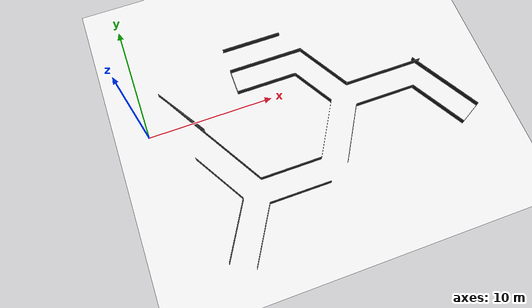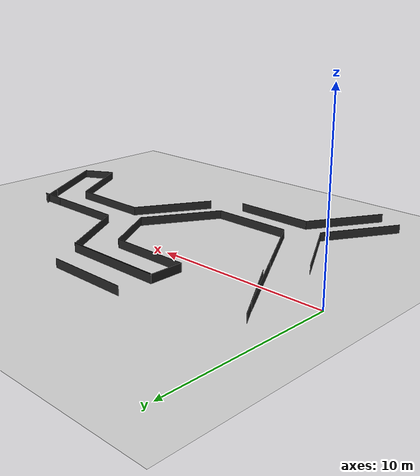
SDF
<sdf version="1.6">
 <world name="default">
  <model name="ground_plane">
   <static>1</static>
   <link name="link">
    <collision name="collision">
     <geometry><plane><normal>0 0 1</normal><size>100 100</size></plane></geometry>
     <surface><friction><ode><mu>100</mu><mu2>50</mu2></ode></friction></surface>
    </collision>
    <visual name="visual">
     <cast_shadows>0</cast_shadows>
     <geometry><plane><normal>0 0 1</normal><size>100 100</size></plane></geometry>
     <material>
      <script><uri>file://media/materials/scripts/gazebo.material</uri><name>Gazebo/White</name></script>
     </material>
    </visual>
   </link>
  </model>
  <model name="T_maze_0">
   <link name="link_clone_clone_1_clone_clone_0_clone">
    <inertial>
     <mass>1</mass>
     <inertia>
      <ixx>0.166667</ixx>
      <ixy>0</ixy>
      <ixz>0</ixz>
      <iyy>0.166667</iyy>
      <iyz>0</iyz>
      <izz>0.166667</izz>
     </inertia>
    </inertial>
    <pose>-0.706969 0.731883 3e-06 5e-06 -0 0</pose>
    <visual name="visual">
     <geometry><box><size>0.015 6 0.5</size></box></geometry>
     <material>
      <script><name>Gazebo/FlatBlack</name><uri>file://media/materials/scripts/gazebo.material</uri></script>
      <shader type="pixel"><normal_map>__default__</normal_map></shader>
      <ambient>0.1 0.1 0.1 1</ambient>
      <diffuse>0.1 0.1 0.1 1</diffuse>
      <specular>0.01 0.01 0.01 1</specular>
      <emissive>0 0 0 1</emissive>
     </material>
     <pose>0 0.58 0 0 -0 0</pose>
    </visual>
    <visual name="visual_2">
     <geometry><box><size>0.015 4.8453 0.5</size></box></geometry>
     <material>
      <script><name>Gazebo/FlatBlack</name><uri>file://media/materials/scripts/gazebo.material</uri></script>
      <shader type="pixel"><normal_map>__default__</normal_map></shader>
      <ambient>0.1 0.1 0.1 1</ambient>
      <diffuse>0.1 0.1 0.1 1</diffuse>
      <specular>0.01 0.01 0.01 1</specular>
      <emissive>0 0 0 1</emissive>
     </material>
     <pose>2 0 0 0 -0 0</pose>
    </visual>
    <collision name="collision">
     <pose>0 0.58 0 0 -0 0</pose>
     <geometry><box><size>0.015 6 0.5</size></box></geometry>
     <surface>
      <friction>
       <ode><mu>1</mu><mu2>1</mu2><fdir1>0 0 0</fdir1><slip1>0</slip1><slip2>0</slip2></ode>
       <torsional>
        <coefficient>1</coefficient>
        <patch_radius>0</patch_radius>
        <surface_radius>0</surface_radius>
        <use_patch_radius>1</use_patch_radius>
        <ode><slip>0</slip></ode>
       </torsional>
      </friction>
      <bounce><restitution_coefficient>0</restitution_coefficient><threshold>1e+06</threshold></bounce>
      <contact>
       <collide_without_contact>0</collide_without_contact>
       <collide_without_contact_bitmask>1</collide_without_contact_bitmask>
       <collide_bitmask>1</collide_bitmask>
       <ode>
        <soft_cfm>0</soft_cfm>
        <soft_erp>0.2</soft_erp>
        <kp>1e+13</kp>
        <kd>1</kd>
        <max_vel>0.01</max_vel>
        <min_depth>0</min_depth>
       </ode>
       <bullet>
        <split_impulse>1</split_impulse>
        <split_impulse_penetration_threshold>-0.01</split_impulse_penetration_threshold>
        <soft_cfm>0</soft_cfm>
        <soft_erp>0.2</soft_erp>
        <kp>1e+13</kp>
        <kd>1</kd>
       </bullet>
      </contact>
     </surface>
    </collision>
    <collision name="collision_1">
     <pose>2 0 0 0 -0 0</pose>
     <geometry><box><size>0.015 4.8453 0.5</size></box></geometry>
     <surface>
      <friction>
       <ode><mu>1</mu><mu2>1</mu2><fdir1>0 0 0</fdir1><slip1>0</slip1><slip2>0</slip2></ode>
       <torsional>
        <coefficient>1</coefficient>
        <patch_radius>0</patch_radius>
        <surface_radius>0</surface_radius>
        <use_patch_radius>1</use_patch_radius>
        <ode><slip>0</slip></ode>
       </torsional>
      </friction>
      <bounce><restitution_coefficient>0</restitution_coefficient><threshold>1e+06</threshold></bounce>
      <contact>
       <collide_without_contact>0</collide_without_contact>
       <collide_without_contact_bitmask>1</collide_without_contact_bitmask>
       <collide_bitmask>1</collide_bitmask>
       <ode>
        <soft_cfm>0</soft_cfm>
        <soft_erp>0.2</soft_erp>
        <kp>1e+13</kp>
        <kd>1</kd>
        <max_vel>0.01</max_vel>
        <min_depth>0</min_depth>
       </ode>
       <bullet>
        <split_impulse>1</split_impulse>
        <split_impulse_penetration_threshold>-0.01</split_impulse_penetration_threshold>
        <soft_cfm>0</soft_cfm>
        <soft_erp>0.2</soft_erp>
        <kp>1e+13</kp>
        <kd>1</kd>
       </bullet>
      </contact>
     </surface>
    </collision>
   </link>
   <static>1</static>
   <pose>9.33217 3.95788 0.249997 -3.14159 -3e-06 1.57079</pose>
  </model>
  <model name="T_camber_2_2">
   <link name="link">
    <inertial>
     <mass>1</mass>
     <inertia>
      <ixx>0.166667</ixx>
      <ixy>0</ixy>
      <ixz>0</ixz>
      <iyy>0.166667</iyy>
      <iyz>0</iyz>
      <izz>0.166667</izz>
     </inertia>
    </inertial>
    <pose>8.67982 0.164586 0 0 -0 0</pose>
    <visual name="visual">
     <geometry><box><size>0.015 4.8453 0.5</size></box></geometry>
     <material>
      <script><name>Gazebo/FlatBlack</name><uri>file://media/materials/scripts/gazebo.material</uri></script>
      <shader type="pixel"><normal_map>__default__</normal_map></shader>
      <ambient>0.1 0.1 0.1 1</ambient>
      <diffuse>0.1 0.1 0.1 1</diffuse>
      <specular>0.01 0.01 0.01 1</specular>
      <emissive>0 0 0 1</emissive>
     </material>
    </visual>
    <visual name="ModelPreview_1::link::visual_2">
     <geometry><box><size>0.015 4.8453 0.5</size></box></geometry>
     <material>
      <script><name>Gazebo/FlatBlack</name><uri>file://media/materials/scripts/gazebo.material</uri></script>
      <shader type="pixel"><normal_map>__default__</normal_map></shader>
      <ambient>0.1 0.1 0.1 1</ambient>
      <diffuse>0.1 0.1 0.1 1</diffuse>
      <specular>0.01 0.01 0.01 1</specular>
      <emissive>0 0 0 1</emissive>
     </material>
     <pose>2 0 0 0 -0 0</pose>
    </visual>
    <collision name="collision_1">
     <pose>2 0 0 0 -0 0</pose>
     <geometry><box><size>0.015 4.8453 0.5</size></box></geometry>
     <surface>
      <friction>
       <ode><mu>1</mu><mu2>1</mu2><fdir1>0 0 0</fdir1><slip1>0</slip1><slip2>0</slip2></ode>
       <torsional>
        <coefficient>1</coefficient>
        <patch_radius>0</patch_radius>
        <surface_radius>0</surface_radius>
        <use_patch_radius>1</use_patch_radius>
        <ode><slip>0</slip></ode>
       </torsional>
      </friction>
      <bounce><restitution_coefficient>0</restitution_coefficient><threshold>1e+06</threshold></bounce>
      <contact>
       <collide_without_contact>0</collide_without_contact>
       <collide_without_contact_bitmask>1</collide_without_contact_bitmask>
       <collide_bitmask>1</collide_bitmask>
       <ode>
        <soft_cfm>0</soft_cfm>
        <soft_erp>0.2</soft_erp>
        <kp>1e+13</kp>
        <kd>1</kd>
        <max_vel>0.01</max_vel>
        <min_depth>0</min_depth>
       </ode>
       <bullet>
        <split_impulse>1</split_impulse>
        <split_impulse_penetration_threshold>-0.01</split_impulse_penetration_threshold>
        <soft_cfm>0</soft_cfm>
        <soft_erp>0.2</soft_erp>
        <kp>1e+13</kp>
        <kd>1</kd>
       </bullet>
      </contact>
     </surface>
    </collision>
    <collision name="collision">
     <geometry><box><size>0.015 4.8453 0.5</size></box></geometry>
     <surface>
      <friction>
       <ode><mu>1</mu><mu2>1</mu2><fdir1>0 0 0</fdir1><slip1>0</slip1><slip2>0</slip2></ode>
       <torsional>
        <coefficient>1</coefficient>
        <patch_radius>0</patch_radius>
        <surface_radius>0</surface_radius>
        <use_patch_radius>1</use_patch_radius>
        <ode><slip>0</slip></ode>
       </torsional>
      </friction>
      <bounce><restitution_coefficient>0</restitution_coefficient><threshold>1e+06</threshold></bounce>
      <contact>
       <collide_without_contact>0</collide_without_contact>
       <collide_without_contact_bitmask>1</collide_without_contact_bitmask>
       <collide_bitmask>1</collide_bitmask>
       <ode>
        <soft_cfm>0</soft_cfm>
        <soft_erp>0.2</soft_erp>
        <kp>1e+13</kp>
        <kd>1</kd>
        <max_vel>0.01</max_vel>
        <min_depth>0</min_depth>
       </ode>
       <bullet>
        <split_impulse>1</split_impulse>
        <split_impulse_penetration_threshold>-0.01</split_impulse_penetration_threshold>
        <soft_cfm>0</soft_cfm>
        <soft_erp>0.2</soft_erp>
        <kp>1e+13</kp>
        <kd>1</kd>
       </bullet>
      </contact>
     </surface>
    </collision>
   </link>
   <link name="link_clone_0">
    <inertial>
     <mass>1</mass>
     <inertia>
      <ixx>0.166667</ixx>
      <ixy>0</ixy>
      <ixz>0</ixz>
      <iyy>0.166667</iyy>
      <iyz>0</iyz>
      <izz>0.166667</izz>
     </inertia>
    </inertial>
    <pose>7.58433 5.52401 0 5e-06 -0 -2.0944</pose>
    <visual name="visual_2">
     <geometry><box><size>0.015 4.8453 0.5</size></box></geometry>
     <material>
      <script><name>Gazebo/FlatBlack</name><uri>file://media/materials/scripts/gazebo.material</uri></script>
      <shader type="pixel"><normal_map>__default__</normal_map></shader>
      <ambient>0.1 0.1 0.1 1</ambient>
      <diffuse>0.1 0.1 0.1 1</diffuse>
      <specular>0.01 0.01 0.01 1</specular>
      <emissive>0 0 0 1</emissive>
     </material>
     <pose>2 0 0 0 -0 0</pose>
    </visual>
    <visual name="visual">
     <geometry><box><size>0.015 4.8453 0.5</size></box></geometry>
     <material>
      <script><name>Gazebo/FlatBlack</name><uri>file://media/materials/scripts/gazebo.material</uri></script>
      <shader type="pixel"><normal_map>__default__</normal_map></shader>
      <ambient>0.1 0.1 0.1 1</ambient>
      <diffuse>0.1 0.1 0.1 1</diffuse>
      <specular>0.01 0.01 0.01 1</specular>
      <emissive>0 0 0 1</emissive>
     </material>
    </visual>
    <collision name="collision">
     <geometry><box><size>0.015 4.8453 0.5</size></box></geometry>
     <surface>
      <friction>
       <ode><mu>1</mu><mu2>1</mu2><fdir1>0 0 0</fdir1><slip1>0</slip1><slip2>0</slip2></ode>
       <torsional>
        <coefficient>1</coefficient>
        <patch_radius>0</patch_radius>
        <surface_radius>0</surface_radius>
        <use_patch_radius>1</use_patch_radius>
        <ode><slip>0</slip></ode>
       </torsional>
      </friction>
      <bounce><restitution_coefficient>0</restitution_coefficient><threshold>1e+06</threshold></bounce>
      <contact>
       <collide_without_contact>0</collide_without_contact>
       <collide_without_contact_bitmask>1</collide_without_contact_bitmask>
       <collide_bitmask>1</collide_bitmask>
       <ode>
        <soft_cfm>0</soft_cfm>
        <soft_erp>0.2</soft_erp>
        <kp>1e+13</kp>
        <kd>1</kd>
        <max_vel>0.01</max_vel>
        <min_depth>0</min_depth>
       </ode>
       <bullet>
        <split_impulse>1</split_impulse>
        <split_impulse_penetration_threshold>-0.01</split_impulse_penetration_threshold>
        <soft_cfm>0</soft_cfm>
        <soft_erp>0.2</soft_erp>
        <kp>1e+13</kp>
        <kd>1</kd>
       </bullet>
      </contact>
     </surface>
    </collision>
    <collision name="collision_1">
     <pose>2 0 0 0 -0 0</pose>
     <geometry><box><size>0.015 4.8453 0.5</size></box></geometry>
     <surface>
      <friction>
       <ode><mu>1</mu><mu2>1</mu2><fdir1>0 0 0</fdir1><slip1>0</slip1><slip2>0</slip2></ode>
       <torsional>
        <coefficient>1</coefficient>
        <patch_radius>0</patch_radius>
        <surface_radius>0</surface_radius>
        <use_patch_radius>1</use_patch_radius>
        <ode><slip>0</slip></ode>
       </torsional>
      </friction>
      <bounce><restitution_coefficient>0</restitution_coefficient><threshold>1e+06</threshold></bounce>
      <contact>
       <collide_without_contact>0</collide_without_contact>
       <collide_without_contact_bitmask>1</collide_without_contact_bitmask>
       <collide_bitmask>1</collide_bitmask>
       <ode>
        <soft_cfm>0</soft_cfm>
        <soft_erp>0.2</soft_erp>
        <kp>1e+13</kp>
        <kd>1</kd>
        <max_vel>0.01</max_vel>
        <min_depth>0</min_depth>
       </ode>
       <bullet>
        <split_impulse>1</split_impulse>
        <split_impulse_penetration_threshold>-0.01</split_impulse_penetration_threshold>
        <soft_cfm>0</soft_cfm>
        <soft_erp>0.2</soft_erp>
        <kp>1e+13</kp>
        <kd>1</kd>
       </bullet>
      </contact>
     </surface>
    </collision>
   </link>
   <link name="link_clone_0_clone">
    <inertial>
     <mass>1</mass>
     <inertia>
      <ixx>0.166667</ixx>
      <ixy>0</ixy>
      <ixz>0</ixz>
      <iyy>0.166667</iyy>
      <iyz>0</iyz>
      <izz>0.166667</izz>
     </inertia>
    </inertial>
    <pose>12.7746 -3.46264 0 5e-06 -0 -2.0944</pose>
    <visual name="visual">
     <geometry><box><size>0.015 4.8453 0.5</size></box></geometry>
     <material>
      <script><name>Gazebo/FlatBlack</name><uri>file://media/materials/scripts/gazebo.material</uri></script>
      <shader type="pixel"><normal_map>__default__</normal_map></shader>
      <ambient>0.1 0.1 0.1 1</ambient>
      <diffuse>0.1 0.1 0.1 1</diffuse>
      <specular>0.01 0.01 0.01 1</specular>
      <emissive>0 0 0 1</emissive>
     </material>
    </visual>
    <visual name="visual_2">
     <geometry><box><size>0.015 4.8453 0.5</size></box></geometry>
     <material>
      <script><name>Gazebo/FlatBlack</name><uri>file://media/materials/scripts/gazebo.material</uri></script>
      <shader type="pixel"><normal_map>__default__</normal_map></shader>
      <ambient>0.1 0.1 0.1 1</ambient>
      <diffuse>0.1 0.1 0.1 1</diffuse>
      <specular>0.01 0.01 0.01 1</specular>
      <emissive>0 0 0 1</emissive>
     </material>
     <pose>2 0 0 0 -0 0</pose>
    </visual>
    <collision name="collision">
     <geometry><box><size>0.015 4.8453 0.5</size></box></geometry>
     <surface>
      <friction>
       <ode><mu>1</mu><mu2>1</mu2><fdir1>0 0 0</fdir1><slip1>0</slip1><slip2>0</slip2></ode>
       <torsional>
        <coefficient>1</coefficient>
        <patch_radius>0</patch_radius>
        <surface_radius>0</surface_radius>
        <use_patch_radius>1</use_patch_radius>
        <ode><slip>0</slip></ode>
       </torsional>
      </friction>
      <bounce><restitution_coefficient>0</restitution_coefficient><threshold>1e+06</threshold></bounce>
      <contact>
       <collide_without_contact>0</collide_without_contact>
       <collide_without_contact_bitmask>1</collide_without_contact_bitmask>
       <collide_bitmask>1</collide_bitmask>
       <ode>
        <soft_cfm>0</soft_cfm>
        <soft_erp>0.2</soft_erp>
        <kp>1e+13</kp>
        <kd>1</kd>
        <max_vel>0.01</max_vel>
        <min_depth>0</min_depth>
       </ode>
       <bullet>
        <split_impulse>1</split_impulse>
        <split_impulse_penetration_threshold>-0.01</split_impulse_penetration_threshold>
        <soft_cfm>0</soft_cfm>
        <soft_erp>0.2</soft_erp>
        <kp>1e+13</kp>
        <kd>1</kd>
       </bullet>
      </contact>
     </surface>
    </collision>
    <collision name="collision_1">
     <pose>2 0 0 0 -0 0</pose>
     <geometry><box><size>0.015 4.8453 0.5</size></box></geometry>
     <surface>
      <friction>
       <ode><mu>1</mu><mu2>1</mu2><fdir1>0 0 0</fdir1><slip1>0</slip1><slip2>0</slip2></ode>
       <torsional>
        <coefficient>1</coefficient>
        <patch_radius>0</patch_radius>
        <surface_radius>0</surface_radius>
        <use_patch_radius>1</use_patch_radius>
        <ode><slip>0</slip></ode>
       </torsional>
      </friction>
      <bounce><restitution_coefficient>0</restitution_coefficient><threshold>1e+06</threshold></bounce>
      <contact>
       <collide_without_contact>0</collide_without_contact>
       <collide_without_contact_bitmask>1</collide_without_contact_bitmask>
       <collide_bitmask>1</collide_bitmask>
       <ode>
        <soft_cfm>0</soft_cfm>
        <soft_erp>0.2</soft_erp>
        <kp>1e+13</kp>
        <kd>1</kd>
        <max_vel>0.01</max_vel>
        <min_depth>0</min_depth>
       </ode>
       <bullet>
        <split_impulse>1</split_impulse>
        <split_impulse_penetration_threshold>-0.01</split_impulse_penetration_threshold>
        <soft_cfm>0</soft_cfm>
        <soft_erp>0.2</soft_erp>
        <kp>1e+13</kp>
        <kd>1</kd>
       </bullet>
      </contact>
     </surface>
    </collision>
   </link>
   <link name="link_clone_0_clone_clone_1_clone_0">
    <inertial>
     <mass>1</mass>
     <inertia>
      <ixx>0.166667</ixx>
      <ixy>0</ixy>
      <ixz>0</ixz>
      <iyy>0.166667</iyy>
      <iyz>0</iyz>
      <izz>0.166667</izz>
     </inertia>
    </inertial>
    <pose>2.39592 3.79036 1e-06 5e-06 -0 2.0944</pose>
    <visual name="visual">
     <geometry><box><size>0.015 3.7053 0.5</size></box></geometry>
     <material>
      <script><name>Gazebo/FlatBlack</name><uri>file://media/materials/scripts/gazebo.material</uri></script>
      <shader type="pixel"><normal_map>__default__</normal_map></shader>
      <ambient>0.1 0.1 0.1 1</ambient>
      <diffuse>0.1 0.1 0.1 1</diffuse>
      <specular>0.01 0.01 0.01 1</specular>
      <emissive>0 0 0 1</emissive>
     </material>
     <pose>0 -0.57 0 0 -0 0</pose>
    </visual>
    <visual name="visual_2">
     <geometry><box><size>0.015 4.8453 0.5</size></box></geometry>
     <material>
      <script><name>Gazebo/FlatBlack</name><uri>file://media/materials/scripts/gazebo.material</uri></script>
      <shader type="pixel"><normal_map>__default__</normal_map></shader>
      <ambient>0.1 0.1 0.1 1</ambient>
      <diffuse>0.1 0.1 0.1 1</diffuse>
      <specular>0.01 0.01 0.01 1</specular>
      <emissive>0 0 0 1</emissive>
     </material>
     <pose>2 0 0 0 -0 0</pose>
    </visual>
    <collision name="collision">
     <pose>0 -0.57 0 0 -0 0</pose>
     <geometry><box><size>0.015 3.7053 0.5</size></box></geometry>
     <surface>
      <friction>
       <ode><mu>1</mu><mu2>1</mu2><fdir1>0 0 0</fdir1><slip1>0</slip1><slip2>0</slip2></ode>
       <torsional>
        <coefficient>1</coefficient>
        <patch_radius>0</patch_radius>
        <surface_radius>0</surface_radius>
        <use_patch_radius>1</use_patch_radius>
        <ode><slip>0</slip></ode>
       </torsional>
      </friction>
      <bounce><restitution_coefficient>0</restitution_coefficient><threshold>1e+06</threshold></bounce>
      <contact>
       <collide_without_contact>0</collide_without_contact>
       <collide_without_contact_bitmask>1</collide_without_contact_bitmask>
       <collide_bitmask>1</collide_bitmask>
       <ode>
        <soft_cfm>0</soft_cfm>
        <soft_erp>0.2</soft_erp>
        <kp>1e+13</kp>
        <kd>1</kd>
        <max_vel>0.01</max_vel>
        <min_depth>0</min_depth>
       </ode>
       <bullet>
        <split_impulse>1</split_impulse>
        <split_impulse_penetration_threshold>-0.01</split_impulse_penetration_threshold>
        <soft_cfm>0</soft_cfm>
        <soft_erp>0.2</soft_erp>
        <kp>1e+13</kp>
        <kd>1</kd>
       </bullet>
      </contact>
     </surface>
    </collision>
    <collision name="collision_1">
     <pose>2 0 0 0 -0 0</pose>
     <geometry><box><size>0.015 4.8453 0.5</size></box></geometry>
     <surface>
      <friction>
       <ode><mu>1</mu><mu2>1</mu2><fdir1>0 0 0</fdir1><slip1>0</slip1><slip2>0</slip2></ode>
       <torsional>
        <coefficient>1</coefficient>
        <patch_radius>0</patch_radius>
        <surface_radius>0</surface_radius>
        <use_patch_radius>1</use_patch_radius>
        <ode><slip>0</slip></ode>
       </torsional>
      </friction>
      <bounce><restitution_coefficient>0</restitution_coefficient><threshold>1e+06</threshold></bounce>
      <contact>
       <collide_without_contact>0</collide_without_contact>
       <collide_without_contact_bitmask>1</collide_without_contact_bitmask>
       <collide_bitmask>1</collide_bitmask>
       <ode>
        <soft_cfm>0</soft_cfm>
        <soft_erp>0.2</soft_erp>
        <kp>1e+13</kp>
        <kd>1</kd>
        <max_vel>0.01</max_vel>
        <min_depth>0</min_depth>
       </ode>
       <bullet>
        <split_impulse>1</split_impulse>
        <split_impulse_penetration_threshold>-0.01</split_impulse_penetration_threshold>
        <soft_cfm>0</soft_cfm>
        <soft_erp>0.2</soft_erp>
        <kp>1e+13</kp>
        <kd>1</kd>
       </bullet>
      </contact>
     </surface>
    </collision>
   </link>
   <link name="link_clone_0_clone_clone_1_clone_0_clone_clone_0_clone_2">
    <inertial>
     <mass>1</mass>
     <inertia>
      <ixx>0.166667</ixx>
      <ixy>0</ixy>
      <ixz>0</ixz>
      <iyy>0.166667</iyy>
      <iyz>0</iyz>
      <izz>0.166667</izz>
     </inertia>
    </inertial>
    <pose>1.89546 -6.09047 2.3e-05 4e-06 2e-06 -1.01446</pose>
    <visual name="visual">
     <geometry><box><size>0.015 4.8453 0.5</size></box></geometry>
     <material>
      <script><name>Gazebo/FlatBlack</name><uri>file://media/materials/scripts/gazebo.material</uri></script>
      <shader type="pixel"><normal_map>__default__</normal_map></shader>
      <ambient>0.1 0.1 0.1 1</ambient>
      <diffuse>0.1 0.1 0.1 1</diffuse>
      <specular>0.01 0.01 0.01 1</specular>
      <emissive>0 0 0 1</emissive>
     </material>
     <pose>0 -0.57 0 0 -0 0</pose>
    </visual>
    <collision name="collision">
     <pose>0 -0.57 0 0 -0 0</pose>
     <geometry><box><size>0.015 4.8453 0.5</size></box></geometry>
     <surface>
      <friction>
       <ode><mu>1</mu><mu2>1</mu2><fdir1>0 0 0</fdir1><slip1>0</slip1><slip2>0</slip2></ode>
       <torsional>
        <coefficient>1</coefficient>
        <patch_radius>0</patch_radius>
        <surface_radius>0</surface_radius>
        <use_patch_radius>1</use_patch_radius>
        <ode><slip>0</slip></ode>
       </torsional>
      </friction>
      <bounce><restitution_coefficient>0</restitution_coefficient><threshold>1e+06</threshold></bounce>
      <contact>
       <collide_without_contact>0</collide_without_contact>
       <collide_without_contact_bitmask>1</collide_without_contact_bitmask>
       <collide_bitmask>1</collide_bitmask>
       <ode>
        <soft_cfm>0</soft_cfm>
        <soft_erp>0.2</soft_erp>
        <kp>1e+13</kp>
        <kd>1</kd>
        <max_vel>0.01</max_vel>
        <min_depth>0</min_depth>
       </ode>
       <bullet>
        <split_impulse>1</split_impulse>
        <split_impulse_penetration_threshold>-0.01</split_impulse_penetration_threshold>
        <soft_cfm>0</soft_cfm>
        <soft_erp>0.2</soft_erp>
        <kp>1e+13</kp>
        <kd>1</kd>
       </bullet>
      </contact>
     </surface>
    </collision>
   </link>
   <link name="link_clone_0_clone_clone_1_clone_0_clone_clone_1_clone">
    <inertial>
     <mass>1</mass>
     <inertia>
      <ixx>0.166667</ixx>
      <ixy>0</ixy>
      <ixz>0</ixz>
      <iyy>0.166667</iyy>
      <iyz>0</iyz>
      <izz>0.166667</izz>
     </inertia>
    </inertial>
    <pose>1.95158 -6.14009 7e-06 0 5e-06 2.0944</pose>
    <visual name="visual">
     <geometry><box><size>0.015 4.8453 0.5</size></box></geometry>
     <material>
      <script><name>Gazebo/FlatBlack</name><uri>file://media/materials/scripts/gazebo.material</uri></script>
      <shader type="pixel"><normal_map>__default__</normal_map></shader>
      <ambient>0.1 0.1 0.1 1</ambient>
      <diffuse>0.1 0.1 0.1 1</diffuse>
      <specular>0.01 0.01 0.01 1</specular>
      <emissive>0 0 0 1</emissive>
     </material>
     <pose>0 -0.57 0 0 -0 0</pose>
    </visual>
    <collision name="collision">
     <pose>0 -0.57 0 0 -0 0</pose>
     <geometry><box><size>0.015 4.8453 0.5</size></box></geometry>
     <surface>
      <friction>
       <ode><mu>1</mu><mu2>1</mu2><fdir1>0 0 0</fdir1><slip1>0</slip1><slip2>0</slip2></ode>
       <torsional>
        <coefficient>1</coefficient>
        <patch_radius>0</patch_radius>
        <surface_radius>0</surface_radius>
        <use_patch_radius>1</use_patch_radius>
        <ode><slip>0</slip></ode>
       </torsional>
      </friction>
      <bounce><restitution_coefficient>0</restitution_coefficient><threshold>1e+06</threshold></bounce>
      <contact>
       <collide_without_contact>0</collide_without_contact>
       <collide_without_contact_bitmask>1</collide_without_contact_bitmask>
       <collide_bitmask>1</collide_bitmask>
       <ode>
        <soft_cfm>0</soft_cfm>
        <soft_erp>0.2</soft_erp>
        <kp>1e+13</kp>
        <kd>1</kd>
        <max_vel>0.01</max_vel>
        <min_depth>0</min_depth>
       </ode>
       <bullet>
        <split_impulse>1</split_impulse>
        <split_impulse_penetration_threshold>-0.01</split_impulse_penetration_threshold>
        <soft_cfm>0</soft_cfm>
        <soft_erp>0.2</soft_erp>
        <kp>1e+13</kp>
        <kd>1</kd>
       </bullet>
      </contact>
     </surface>
    </collision>
   </link>
   <link name="link_clone_1_clone">
    <inertial>
     <mass>1</mass>
     <inertia>
      <ixx>0.166667</ixx>
      <ixy>0</ixy>
      <ixz>0</ixz>
      <iyy>0.166667</iyy>
      <iyz>0</iyz>
      <izz>0.166667</izz>
     </inertia>
    </inertial>
    <pose>3.49174 9.15144 0 0 -0 0</pose>
    <visual name="visual_2">
     <geometry><box><size>0.015 4.8453 0.5</size></box></geometry>
     <material>
      <script><name>Gazebo/FlatBlack</name><uri>file://media/materials/scripts/gazebo.material</uri></script>
      <shader type="pixel"><normal_map>__default__</normal_map></shader>
      <ambient>0.1 0.1 0.1 1</ambient>
      <diffuse>0.1 0.1 0.1 1</diffuse>
      <specular>0.01 0.01 0.01 1</specular>
      <emissive>0 0 0 1</emissive>
     </material>
     <pose>2 0 0 0 -0 0</pose>
    </visual>
    <visual name="visual">
     <geometry><box><size>0.015 4.8453 0.5</size></box></geometry>
     <material>
      <script><name>Gazebo/FlatBlack</name><uri>file://media/materials/scripts/gazebo.material</uri></script>
      <shader type="pixel"><normal_map>__default__</normal_map></shader>
      <ambient>0.1 0.1 0.1 1</ambient>
      <diffuse>0.1 0.1 0.1 1</diffuse>
      <specular>0.01 0.01 0.01 1</specular>
      <emissive>0 0 0 1</emissive>
     </material>
    </visual>
    <collision name="collision_1">
     <pose>2 0 0 0 -0 0</pose>
     <geometry><box><size>0.015 4.8453 0.5</size></box></geometry>
     <surface>
      <friction>
       <ode><mu>1</mu><mu2>1</mu2><fdir1>0 0 0</fdir1><slip1>0</slip1><slip2>0</slip2></ode>
       <torsional>
        <coefficient>1</coefficient>
        <patch_radius>0</patch_radius>
        <surface_radius>0</surface_radius>
        <use_patch_radius>1</use_patch_radius>
        <ode><slip>0</slip></ode>
       </torsional>
      </friction>
      <bounce><restitution_coefficient>0</restitution_coefficient><threshold>1e+06</threshold></bounce>
      <contact>
       <collide_without_contact>0</collide_without_contact>
       <collide_without_contact_bitmask>1</collide_without_contact_bitmask>
       <collide_bitmask>1</collide_bitmask>
       <ode>
        <soft_cfm>0</soft_cfm>
        <soft_erp>0.2</soft_erp>
        <kp>1e+13</kp>
        <kd>1</kd>
        <max_vel>0.01</max_vel>
        <min_depth>0</min_depth>
       </ode>
       <bullet>
        <split_impulse>1</split_impulse>
        <split_impulse_penetration_threshold>-0.01</split_impulse_penetration_threshold>
        <soft_cfm>0</soft_cfm>
        <soft_erp>0.2</soft_erp>
        <kp>1e+13</kp>
        <kd>1</kd>
       </bullet>
      </contact>
     </surface>
    </collision>
    <collision name="collision">
     <geometry><box><size>0.015 4.8453 0.5</size></box></geometry>
     <surface>
      <friction>
       <ode><mu>1</mu><mu2>1</mu2><fdir1>0 0 0</fdir1><slip1>0</slip1><slip2>0</slip2></ode>
       <torsional>
        <coefficient>1</coefficient>
        <patch_radius>0</patch_radius>
        <surface_radius>0</surface_radius>
        <use_patch_radius>1</use_patch_radius>
        <ode><slip>0</slip></ode>
       </torsional>
      </friction>
      <bounce><restitution_coefficient>0</restitution_coefficient><threshold>1e+06</threshold></bounce>
      <contact>
       <collide_without_contact>0</collide_without_contact>
       <collide_without_contact_bitmask>1</collide_without_contact_bitmask>
       <collide_bitmask>1</collide_bitmask>
       <ode>
        <soft_cfm>0</soft_cfm>
        <soft_erp>0.2</soft_erp>
        <kp>1e+13</kp>
        <kd>1</kd>
        <max_vel>0.01</max_vel>
        <min_depth>0</min_depth>
       </ode>
       <bullet>
        <split_impulse>1</split_impulse>
        <split_impulse_penetration_threshold>-0.01</split_impulse_penetration_threshold>
        <soft_cfm>0</soft_cfm>
        <soft_erp>0.2</soft_erp>
        <kp>1e+13</kp>
        <kd>1</kd>
       </bullet>
      </contact>
     </surface>
    </collision>
   </link>
   <link name="link_clone_clone">
    <inertial>
     <mass>1</mass>
     <inertia>
      <ixx>0.166667</ixx>
      <ixy>0</ixy>
      <ixz>0</ixz>
      <iyy>0.166667</iyy>
      <iyz>0</iyz>
      <izz>0.166667</izz>
     </inertia>
    </inertial>
    <pose>7.58495 -5.19374 0 5e-06 -0 2.0944</pose>
    <visual name="visual_2">
     <geometry><box><size>0.015 4.8453 0.5</size></box></geometry>
     <material>
      <script><name>Gazebo/FlatBlack</name><uri>file://media/materials/scripts/gazebo.material</uri></script>
      <shader type="pixel"><normal_map>__default__</normal_map></shader>
      <ambient>0.1 0.1 0.1 1</ambient>
      <diffuse>0.1 0.1 0.1 1</diffuse>
      <specular>0.01 0.01 0.01 1</specular>
      <emissive>0 0 0 1</emissive>
     </material>
     <pose>2 0 0 0 -0 0</pose>
    </visual>
    <visual name="visual">
     <geometry><box><size>0.015 4.8453 0.5</size></box></geometry>
     <material>
      <script><name>Gazebo/FlatBlack</name><uri>file://media/materials/scripts/gazebo.material</uri></script>
      <shader type="pixel"><normal_map>__default__</normal_map></shader>
      <ambient>0.1 0.1 0.1 1</ambient>
      <diffuse>0.1 0.1 0.1 1</diffuse>
      <specular>0.01 0.01 0.01 1</specular>
      <emissive>0 0 0 1</emissive>
     </material>
    </visual>
    <collision name="collision">
     <geometry><box><size>0.015 4.8453 0.5</size></box></geometry>
     <surface>
      <friction>
       <ode><mu>1</mu><mu2>1</mu2><fdir1>0 0 0</fdir1><slip1>0</slip1><slip2>0</slip2></ode>
       <torsional>
        <coefficient>1</coefficient>
        <patch_radius>0</patch_radius>
        <surface_radius>0</surface_radius>
        <use_patch_radius>1</use_patch_radius>
        <ode><slip>0</slip></ode>
       </torsional>
      </friction>
      <bounce><restitution_coefficient>0</restitution_coefficient><threshold>1e+06</threshold></bounce>
      <contact>
       <collide_without_contact>0</collide_without_contact>
       <collide_without_contact_bitmask>1</collide_without_contact_bitmask>
       <collide_bitmask>1</collide_bitmask>
       <ode>
        <soft_cfm>0</soft_cfm>
        <soft_erp>0.2</soft_erp>
        <kp>1e+13</kp>
        <kd>1</kd>
        <max_vel>0.01</max_vel>
        <min_depth>0</min_depth>
       </ode>
       <bullet>
        <split_impulse>1</split_impulse>
        <split_impulse_penetration_threshold>-0.01</split_impulse_penetration_threshold>
        <soft_cfm>0</soft_cfm>
        <soft_erp>0.2</soft_erp>
        <kp>1e+13</kp>
        <kd>1</kd>
       </bullet>
      </contact>
     </surface>
    </collision>
    <collision name="collision_1">
     <pose>2 0 0 0 -0 0</pose>
     <geometry><box><size>0.015 4.8453 0.5</size></box></geometry>
     <surface>
      <friction>
       <ode><mu>1</mu><mu2>1</mu2><fdir1>0 0 0</fdir1><slip1>0</slip1><slip2>0</slip2></ode>
       <torsional>
        <coefficient>1</coefficient>
        <patch_radius>0</patch_radius>
        <surface_radius>0</surface_radius>
        <use_patch_radius>1</use_patch_radius>
        <ode><slip>0</slip></ode>
       </torsional>
      </friction>
      <bounce><restitution_coefficient>0</restitution_coefficient><threshold>1e+06</threshold></bounce>
      <contact>
       <collide_without_contact>0</collide_without_contact>
       <collide_without_contact_bitmask>1</collide_without_contact_bitmask>
       <collide_bitmask>1</collide_bitmask>
       <ode>
        <soft_cfm>0</soft_cfm>
        <soft_erp>0.2</soft_erp>
        <kp>1e+13</kp>
        <kd>1</kd>
        <max_vel>0.01</max_vel>
        <min_depth>0</min_depth>
       </ode>
       <bullet>
        <split_impulse>1</split_impulse>
        <split_impulse_penetration_threshold>-0.01</split_impulse_penetration_threshold>
        <soft_cfm>0</soft_cfm>
        <soft_erp>0.2</soft_erp>
        <kp>1e+13</kp>
        <kd>1</kd>
       </bullet>
      </contact>
     </surface>
    </collision>
   </link>
   <link name="link_clone_clone_1_clone_clone">
    <inertial>
     <mass>1</mass>
     <inertia>
      <ixx>0.166667</ixx>
      <ixy>0</ixy>
      <ixz>0</ixz>
      <iyy>0.166667</iyy>
      <iyz>0</iyz>
      <izz>0.166667</izz>
     </inertia>
    </inertial>
    <pose>7.58631 12.7787 0 5e-06 -0 2.0944</pose>
    <visual name="visual_2">
     <geometry><box><size>0.015 4.8453 0.5</size></box></geometry>
     <material>
      <script><name>Gazebo/FlatBlack</name><uri>file://media/materials/scripts/gazebo.material</uri></script>
      <shader type="pixel"><normal_map>__default__</normal_map></shader>
      <ambient>0.1 0.1 0.1 1</ambient>
      <diffuse>0.1 0.1 0.1 1</diffuse>
      <specular>0.01 0.01 0.01 1</specular>
      <emissive>0 0 0 1</emissive>
     </material>
     <pose>2 0 0 0 -0 0</pose>
    </visual>
    <visual name="visual">
     <geometry><box><size>0.015 4.8453 0.5</size></box></geometry>
     <material>
      <script><name>Gazebo/FlatBlack</name><uri>file://media/materials/scripts/gazebo.material</uri></script>
      <shader type="pixel"><normal_map>__default__</normal_map></shader>
      <ambient>0.1 0.1 0.1 1</ambient>
      <diffuse>0.1 0.1 0.1 1</diffuse>
      <specular>0.01 0.01 0.01 1</specular>
      <emissive>0 0 0 1</emissive>
     </material>
    </visual>
    <collision name="collision_1">
     <pose>2 0 0 0 -0 0</pose>
     <geometry><box><size>0.015 4.8453 0.5</size></box></geometry>
     <surface>
      <friction>
       <ode><mu>1</mu><mu2>1</mu2><fdir1>0 0 0</fdir1><slip1>0</slip1><slip2>0</slip2></ode>
       <torsional>
        <coefficient>1</coefficient>
        <patch_radius>0</patch_radius>
        <surface_radius>0</surface_radius>
        <use_patch_radius>1</use_patch_radius>
        <ode><slip>0</slip></ode>
       </torsional>
      </friction>
      <bounce><restitution_coefficient>0</restitution_coefficient><threshold>1e+06</threshold></bounce>
      <contact>
       <collide_without_contact>0</collide_without_contact>
       <collide_without_contact_bitmask>1</collide_without_contact_bitmask>
       <collide_bitmask>1</collide_bitmask>
       <ode>
        <soft_cfm>0</soft_cfm>
        <soft_erp>0.2</soft_erp>
        <kp>1e+13</kp>
        <kd>1</kd>
        <max_vel>0.01</max_vel>
        <min_depth>0</min_depth>
       </ode>
       <bullet>
        <split_impulse>1</split_impulse>
        <split_impulse_penetration_threshold>-0.01</split_impulse_penetration_threshold>
        <soft_cfm>0</soft_cfm>
        <soft_erp>0.2</soft_erp>
        <kp>1e+13</kp>
        <kd>1</kd>
       </bullet>
      </contact>
     </surface>
    </collision>
    <collision name="collision">
     <geometry><box><size>0.015 4.8453 0.5</size></box></geometry>
     <surface>
      <friction>
       <ode><mu>1</mu><mu2>1</mu2><fdir1>0 0 0</fdir1><slip1>0</slip1><slip2>0</slip2></ode>
       <torsional>
        <coefficient>1</coefficient>
        <patch_radius>0</patch_radius>
        <surface_radius>0</surface_radius>
        <use_patch_radius>1</use_patch_radius>
        <ode><slip>0</slip></ode>
       </torsional>
      </friction>
      <bounce><restitution_coefficient>0</restitution_coefficient><threshold>1e+06</threshold></bounce>
      <contact>
       <collide_without_contact>0</collide_without_contact>
       <collide_without_contact_bitmask>1</collide_without_contact_bitmask>
       <collide_bitmask>1</collide_bitmask>
       <ode>
        <soft_cfm>0</soft_cfm>
        <soft_erp>0.2</soft_erp>
        <kp>1e+13</kp>
        <kd>1</kd>
        <max_vel>0.01</max_vel>
        <min_depth>0</min_depth>
       </ode>
       <bullet>
        <split_impulse>1</split_impulse>
        <split_impulse_penetration_threshold>-0.01</split_impulse_penetration_threshold>
        <soft_cfm>0</soft_cfm>
        <soft_erp>0.2</soft_erp>
        <kp>1e+13</kp>
        <kd>1</kd>
       </bullet>
      </contact>
     </surface>
    </collision>
   </link>
   <link name="link_clone_clone_1_clone_clone_0_clone">
    <inertial>
     <mass>1</mass>
     <inertia>
      <ixx>0.166667</ixx>
      <ixy>0</ixy>
      <ixz>0</ixz>
      <iyy>0.166667</iyy>
      <iyz>0</iyz>
      <izz>0.166667</izz>
     </inertia>
    </inertial>
    <pose>-0.706969 0.731883 3e-06 5e-06 -0 0</pose>
    <visual name="visual">
     <geometry><box><size>0.015 6 0.5</size></box></geometry>
     <material>
      <script><name>Gazebo/FlatBlack</name><uri>file://media/materials/scripts/gazebo.material</uri></script>
      <shader type="pixel"><normal_map>__default__</normal_map></shader>
      <ambient>0.1 0.1 0.1 1</ambient>
      <diffuse>0.1 0.1 0.1 1</diffuse>
      <specular>0.01 0.01 0.01 1</specular>
      <emissive>0 0 0 1</emissive>
     </material>
     <pose>0 0.58 0 0 -0 0</pose>
    </visual>
    <visual name="visual_2">
     <geometry><box><size>0.015 4.8453 0.5</size></box></geometry>
     <material>
      <script><name>Gazebo/FlatBlack</name><uri>file://media/materials/scripts/gazebo.material</uri></script>
      <shader type="pixel"><normal_map>__default__</normal_map></shader>
      <ambient>0.1 0.1 0.1 1</ambient>
      <diffuse>0.1 0.1 0.1 1</diffuse>
      <specular>0.01 0.01 0.01 1</specular>
      <emissive>0 0 0 1</emissive>
     </material>
     <pose>2 0 0 0 -0 0</pose>
    </visual>
    <collision name="collision">
     <pose>0 0.58 0 0 -0 0</pose>
     <geometry><box><size>0.015 6 0.5</size></box></geometry>
     <surface>
      <friction>
       <ode><mu>1</mu><mu2>1</mu2><fdir1>0 0 0</fdir1><slip1>0</slip1><slip2>0</slip2></ode>
       <torsional>
        <coefficient>1</coefficient>
        <patch_radius>0</patch_radius>
        <surface_radius>0</surface_radius>
        <use_patch_radius>1</use_patch_radius>
        <ode><slip>0</slip></ode>
       </torsional>
      </friction>
      <bounce><restitution_coefficient>0</restitution_coefficient><threshold>1e+06</threshold></bounce>
      <contact>
       <collide_without_contact>0</collide_without_contact>
       <collide_without_contact_bitmask>1</collide_without_contact_bitmask>
       <collide_bitmask>1</collide_bitmask>
       <ode>
        <soft_cfm>0</soft_cfm>
        <soft_erp>0.2</soft_erp>
        <kp>1e+13</kp>
        <kd>1</kd>
        <max_vel>0.01</max_vel>
        <min_depth>0</min_depth>
       </ode>
       <bullet>
        <split_impulse>1</split_impulse>
        <split_impulse_penetration_threshold>-0.01</split_impulse_penetration_threshold>
        <soft_cfm>0</soft_cfm>
        <soft_erp>0.2</soft_erp>
        <kp>1e+13</kp>
        <kd>1</kd>
       </bullet>
      </contact>
     </surface>
    </collision>
    <collision name="collision_1">
     <pose>2 0 0 0 -0 0</pose>
     <geometry><box><size>0.015 4.8453 0.5</size></box></geometry>
     <surface>
      <friction>
       <ode><mu>1</mu><mu2>1</mu2><fdir1>0 0 0</fdir1><slip1>0</slip1><slip2>0</slip2></ode>
       <torsional>
        <coefficient>1</coefficient>
        <patch_radius>0</patch_radius>
        <surface_radius>0</surface_radius>
        <use_patch_radius>1</use_patch_radius>
        <ode><slip>0</slip></ode>
       </torsional>
      </friction>
      <bounce><restitution_coefficient>0</restitution_coefficient><threshold>1e+06</threshold></bounce>
      <contact>
       <collide_without_contact>0</collide_without_contact>
       <collide_without_contact_bitmask>1</collide_without_contact_bitmask>
       <collide_bitmask>1</collide_bitmask>
       <ode>
        <soft_cfm>0</soft_cfm>
        <soft_erp>0.2</soft_erp>
        <kp>1e+13</kp>
        <kd>1</kd>
        <max_vel>0.01</max_vel>
        <min_depth>0</min_depth>
       </ode>
       <bullet>
        <split_impulse>1</split_impulse>
        <split_impulse_penetration_threshold>-0.01</split_impulse_penetration_threshold>
        <soft_cfm>0</soft_cfm>
        <soft_erp>0.2</soft_erp>
        <kp>1e+13</kp>
        <kd>1</kd>
       </bullet>
      </contact>
     </surface>
    </collision>
   </link>
   <link name="link_clone_clone_clone_clone_0_clone_0_clone">
    <inertial>
     <mass>1</mass>
     <inertia>
      <ixx>0.166667</ixx>
      <ixy>0</ixy>
      <ixz>0</ixz>
      <iyy>0.166667</iyy>
      <iyz>0</iyz>
      <izz>0.166667</izz>
     </inertia>
    </inertial>
    <pose>3.49175 12.3123 -9e-06 5e-06 -0 0</pose>
    <visual name="visual_2">
     <geometry><box><size>0.015 1.5 0.5</size></box></geometry>
     <material>
      <script><name>Gazebo/FlatBlack</name><uri>file://media/materials/scripts/gazebo.material</uri></script>
      <shader type="pixel"><normal_map>__default__</normal_map></shader>
      <ambient>0.1 0.1 0.1 1</ambient>
      <diffuse>0.1 0.1 0.1 1</diffuse>
      <specular>0.01 0.01 0.01 1</specular>
      <emissive>0 0 0 1</emissive>
     </material>
     <pose>0.3525 0.615 0 0 -0 2.0944</pose>
    </visual>
    <visual name="visual">
     <geometry><box><size>0.015 1.5 0.5</size></box></geometry>
     <material>
      <script><name>Gazebo/FlatBlack</name><uri>file://media/materials/scripts/gazebo.material</uri></script>
      <shader type="pixel"><normal_map>__default__</normal_map></shader>
      <ambient>0.1 0.1 0.1 1</ambient>
      <diffuse>0.1 0.1 0.1 1</diffuse>
      <specular>0.01 0.01 0.01 1</specular>
      <emissive>0 0 0 1</emissive>
     </material>
    </visual>
    <collision name="collision">
     <geometry><box><size>0.015 1.5 0.5</size></box></geometry>
     <surface>
      <friction>
       <ode><mu>1</mu><mu2>1</mu2><fdir1>0 0 0</fdir1><slip1>0</slip1><slip2>0</slip2></ode>
       <torsional>
        <coefficient>1</coefficient>
        <patch_radius>0</patch_radius>
        <surface_radius>0</surface_radius>
        <use_patch_radius>1</use_patch_radius>
        <ode><slip>0</slip></ode>
       </torsional>
      </friction>
      <bounce><restitution_coefficient>0</restitution_coefficient><threshold>1e+06</threshold></bounce>
      <contact>
       <collide_without_contact>0</collide_without_contact>
       <collide_without_contact_bitmask>1</collide_without_contact_bitmask>
       <collide_bitmask>1</collide_bitmask>
       <ode>
        <soft_cfm>0</soft_cfm>
        <soft_erp>0.2</soft_erp>
        <kp>1e+13</kp>
        <kd>1</kd>
        <max_vel>0.01</max_vel>
        <min_depth>0</min_depth>
       </ode>
       <bullet>
        <split_impulse>1</split_impulse>
        <split_impulse_penetration_threshold>-0.01</split_impulse_penetration_threshold>
        <soft_cfm>0</soft_cfm>
        <soft_erp>0.2</soft_erp>
        <kp>1e+13</kp>
        <kd>1</kd>
       </bullet>
      </contact>
     </surface>
    </collision>
    <collision name="collision_2">
     <pose>0.3525 0.615 0 0 -0 2.0944</pose>
     <geometry><box><size>0.015 1.5 0.5</size></box></geometry>
     <surface>
      <friction>
       <ode><mu>1</mu><mu2>1</mu2><fdir1>0 0 0</fdir1><slip1>0</slip1><slip2>0</slip2></ode>
       <torsional>
        <coefficient>1</coefficient>
        <patch_radius>0</patch_radius>
        <surface_radius>0</surface_radius>
        <use_patch_radius>1</use_patch_radius>
        <ode><slip>0</slip></ode>
       </torsional>
      </friction>
      <bounce><restitution_coefficient>0</restitution_coefficient><threshold>1e+06</threshold></bounce>
      <contact>
       <collide_without_contact>0</collide_without_contact>
       <collide_without_contact_bitmask>1</collide_without_contact_bitmask>
       <collide_bitmask>1</collide_bitmask>
       <ode>
        <soft_cfm>0</soft_cfm>
        <soft_erp>0.2</soft_erp>
        <kp>1e+13</kp>
        <kd>1</kd>
        <max_vel>0.01</max_vel>
        <min_depth>0</min_depth>
       </ode>
       <bullet>
        <split_impulse>1</split_impulse>
        <split_impulse_penetration_threshold>-0.01</split_impulse_penetration_threshold>
        <soft_cfm>0</soft_cfm>
        <soft_erp>0.2</soft_erp>
        <kp>1e+13</kp>
        <kd>1</kd>
       </bullet>
      </contact>
     </surface>
    </collision>
   </link>
   <link name="link_clone_clone_clone_clone_clone_0_clone">
    <inertial>
     <mass>1</mass>
     <inertia>
      <ixx>0.166667</ixx>
      <ixy>0</ixy>
      <ixz>0</ixz>
      <iyy>0.166667</iyy>
      <iyz>0</iyz>
      <izz>0.166667</izz>
     </inertia>
    </inertial>
    <pose>9.17812 14.8519 -1e-06 4e-06 -2e-06 0.5236</pose>
    <visual name="visual">
     <geometry><box><size>0.015 2 0.5</size></box></geometry>
     <material>
      <script><name>Gazebo/FlatBlack</name><uri>file://media/materials/scripts/gazebo.material</uri></script>
      <shader type="pixel"><normal_map>__default__</normal_map></shader>
      <ambient>0.1 0.1 0.1 1</ambient>
      <diffuse>0.1 0.1 0.1 1</diffuse>
      <specular>0.01 0.01 0.01 1</specular>
      <emissive>0 0 0 1</emissive>
     </material>
    </visual>
    <collision name="collision">
     <geometry><box><size>0.015 2 0.5</size></box></geometry>
     <surface>
      <friction>
       <ode><mu>1</mu><mu2>1</mu2><fdir1>0 0 0</fdir1><slip1>0</slip1><slip2>0</slip2></ode>
       <torsional>
        <coefficient>1</coefficient>
        <patch_radius>0</patch_radius>
        <surface_radius>0</surface_radius>
        <use_patch_radius>1</use_patch_radius>
        <ode><slip>0</slip></ode>
       </torsional>
      </friction>
      <bounce><restitution_coefficient>0</restitution_coefficient><threshold>1e+06</threshold></bounce>
      <contact>
       <collide_without_contact>0</collide_without_contact>
       <collide_without_contact_bitmask>1</collide_without_contact_bitmask>
       <collide_bitmask>1</collide_bitmask>
       <ode>
        <soft_cfm>0</soft_cfm>
        <soft_erp>0.2</soft_erp>
        <kp>1e+13</kp>
        <kd>1</kd>
        <max_vel>0.01</max_vel>
        <min_depth>0</min_depth>
       </ode>
       <bullet>
        <split_impulse>1</split_impulse>
        <split_impulse_penetration_threshold>-0.01</split_impulse_penetration_threshold>
        <soft_cfm>0</soft_cfm>
        <soft_erp>0.2</soft_erp>
        <kp>1e+13</kp>
        <kd>1</kd>
       </bullet>
      </contact>
     </surface>
    </collision>
   </link>
   <link name="link_clone_clone_clone_clone_clone_clone_clone">
    <inertial>
     <mass>1</mass>
     <inertia>
      <ixx>0.166667</ixx>
      <ixy>0</ixy>
      <ixz>0</ixz>
      <iyy>0.166667</iyy>
      <iyz>0</iyz>
      <izz>0.166667</izz>
     </inertia>
    </inertial>
    <pose>0.292336 -1.68075 -1e-06 -0 -4e-06 1.5708</pose>
    <visual name="visual">
     <geometry><box><size>0.015 2 0.5</size></box></geometry>
     <material>
      <script><name>Gazebo/FlatBlack</name><uri>file://media/materials/scripts/gazebo.material</uri></script>
      <shader type="pixel"><normal_map>__default__</normal_map></shader>
      <ambient>0.1 0.1 0.1 1</ambient>
      <diffuse>0.1 0.1 0.1 1</diffuse>
      <specular>0.01 0.01 0.01 1</specular>
      <emissive>0 0 0 1</emissive>
     </material>
    </visual>
    <collision name="collision">
     <geometry><box><size>0.015 2 0.5</size></box></geometry>
     <surface>
      <friction>
       <ode><mu>1</mu><mu2>1</mu2><fdir1>0 0 0</fdir1><slip1>0</slip1><slip2>0</slip2></ode>
       <torsional>
        <coefficient>1</coefficient>
        <patch_radius>0</patch_radius>
        <surface_radius>0</surface_radius>
        <use_patch_radius>1</use_patch_radius>
        <ode><slip>0</slip></ode>
       </torsional>
      </friction>
      <bounce><restitution_coefficient>0</restitution_coefficient><threshold>1e+06</threshold></bounce>
      <contact>
       <collide_without_contact>0</collide_without_contact>
       <collide_without_contact_bitmask>1</collide_without_contact_bitmask>
       <collide_bitmask>1</collide_bitmask>
       <ode>
        <soft_cfm>0</soft_cfm>
        <soft_erp>0.2</soft_erp>
        <kp>1e+13</kp>
        <kd>1</kd>
        <max_vel>0.01</max_vel>
        <min_depth>0</min_depth>
       </ode>
       <bullet>
        <split_impulse>1</split_impulse>
        <split_impulse_penetration_threshold>-0.01</split_impulse_penetration_threshold>
        <soft_cfm>0</soft_cfm>
        <soft_erp>0.2</soft_erp>
        <kp>1e+13</kp>
        <kd>1</kd>
       </bullet>
      </contact>
     </surface>
    </collision>
   </link>
   <static>1</static>
   <pose>9.3097 2.55688 0.225931 0 0 -1.5708</pose>
  </model>
 </world>
</sdf>
